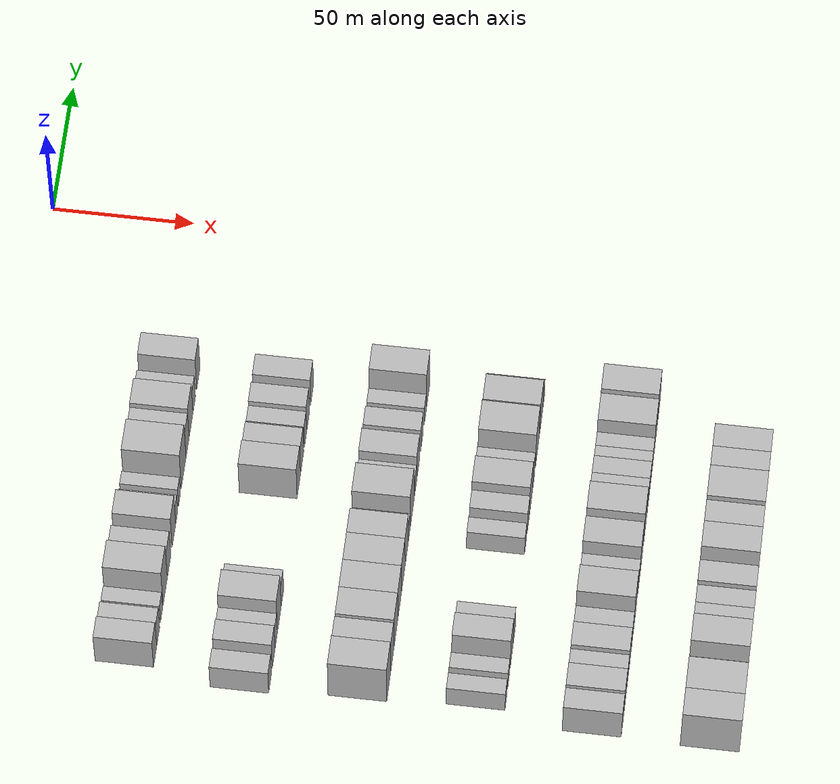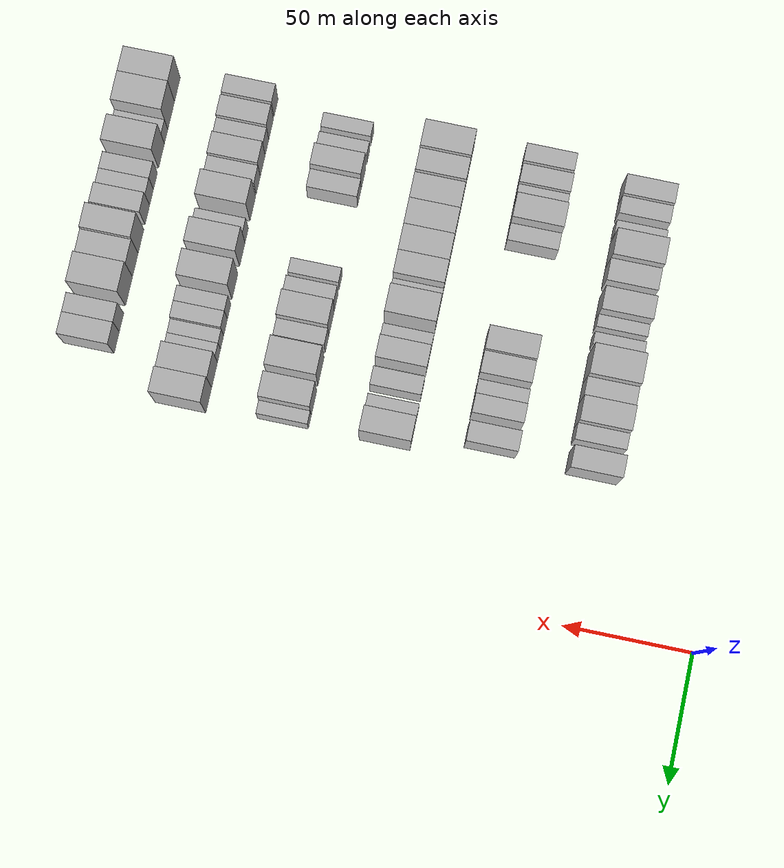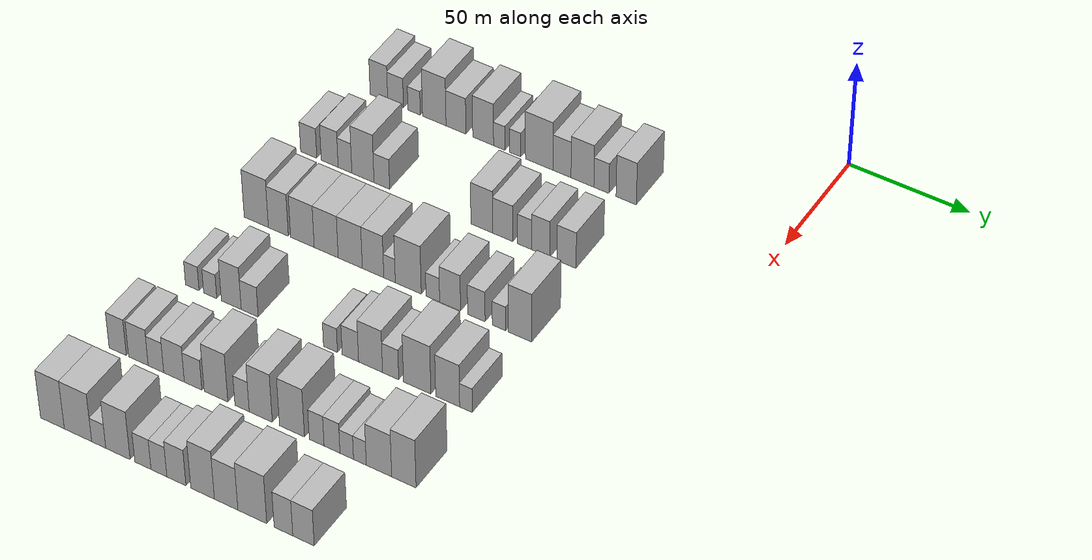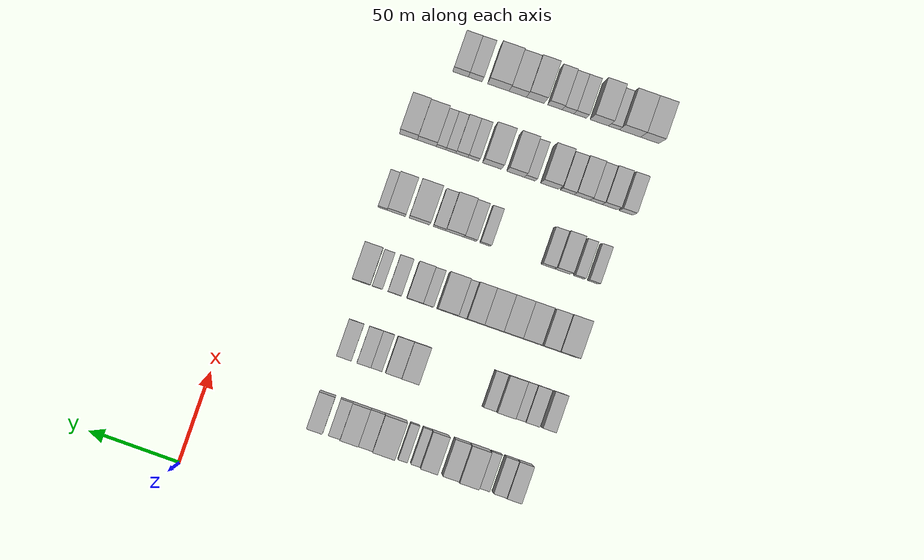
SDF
<sdf version="1.6">
 <world name="default">
  <model name="building_48">
   <static>1</static>
   <pose>50.0000 -169.5506 0 0.000000 0.000000 0.000000</pose>
   <link name="link">
    <pose>0 0 9.00 0 0 0</pose>
    <collision name="collision"><geometry><box><size>20.0000 7.9117 18.0000</size></box></geometry></collision>
    <visual name="visual">
     <cast_shadows>0</cast_shadows>
     <geometry><box><size>20.0000 7.9117 18.0000</size></box></geometry>
     <material>
      <script>
       <uri>model://HANNAS_wall/materials/scripts</uri>
       <uri>model://HANNAS_wall/materials/textures</uri>
       <name>vrc/HANNAS_wall</name>
      </script>
     </material>
    </visual>
   </link>
  </model>
  <model name="building_49">
   <static>1</static>
   <pose>50.0000 -162.0605 0 0.000000 0.000000 0.000000</pose>
   <link name="link">
    <pose>0 0 7.50 0 0 0</pose>
    <collision name="collision"><geometry><box><size>20.0000 7.0684 15.0000</size></box></geometry></collision>
    <visual name="visual">
     <cast_shadows>0</cast_shadows>
     <geometry><box><size>20.0000 7.0684 15.0000</size></box></geometry>
     <material>
      <script>
       <uri>model://HANNAS_wall/materials/scripts</uri>
       <uri>model://HANNAS_wall/materials/textures</uri>
       <name>vrc/HANNAS_wall</name>
      </script>
     </material>
    </visual>
   </link>
  </model>
  <model name="building_50">
   <static>1</static>
   <pose>50.0000 -153.7753 0 0.000000 0.000000 0.000000</pose>
   <link name="link">
    <pose>0 0 6.00 0 0 0</pose>
    <collision name="collision"><geometry><box><size>20.0000 5.5020 12.0000</size></box></geometry></collision>
    <visual name="visual">
     <cast_shadows>0</cast_shadows>
     <geometry><box><size>20.0000 5.5020 12.0000</size></box></geometry>
     <material>
      <script>
       <uri>model://HANNAS_wall/materials/scripts</uri>
       <uri>model://HANNAS_wall/materials/textures</uri>
       <name>vrc/HANNAS_wall</name>
      </script>
     </material>
    </visual>
   </link>
  </model>
  <model name="building_51">
   <static>1</static>
   <pose>50.0000 -144.7977 0 0.000000 0.000000 0.000000</pose>
   <link name="link">
    <pose>0 0 12.00 0 0 0</pose>
    <collision name="collision"><geometry><box><size>20.0000 10.4533 24.0000</size></box></geometry></collision>
    <visual name="visual">
     <cast_shadows>0</cast_shadows>
     <geometry><box><size>20.0000 10.4533 24.0000</size></box></geometry>
     <material>
      <script>
       <uri>model://HANNAS_wall/materials/scripts</uri>
       <uri>model://HANNAS_wall/materials/textures</uri>
       <name>vrc/HANNAS_wall</name>
      </script>
     </material>
    </visual>
   </link>
  </model>
  <model name="building_52">
   <static>1</static>
   <pose>50.0000 -135.1730 0 0.000000 0.000000 0.000000</pose>
   <link name="link">
    <pose>0 0 9.00 0 0 0</pose>
    <collision name="collision"><geometry><box><size>20.0000 8.7961 18.0000</size></box></geometry></collision>
    <visual name="visual">
     <cast_shadows>0</cast_shadows>
     <geometry><box><size>20.0000 8.7961 18.0000</size></box></geometry>
     <material>
      <script>
       <uri>model://HANNAS_wall/materials/scripts</uri>
       <uri>model://HANNAS_wall/materials/textures</uri>
       <name>vrc/HANNAS_wall</name>
      </script>
     </material>
    </visual>
   </link>
  </model>
  <model name="building_53">
   <static>1</static>
   <pose>50.0000 -123.1936 0 0.000000 0.000000 0.000000</pose>
   <link name="link">
    <pose>0 0 10.50 0 0 0</pose>
    <collision name="collision"><geometry><box><size>20.0000 9.1625 21.0000</size></box></geometry></collision>
    <visual name="visual">
     <cast_shadows>0</cast_shadows>
     <geometry><box><size>20.0000 9.1625 21.0000</size></box></geometry>
     <material>
      <script>
       <uri>model://HANNAS_wall/materials/scripts</uri>
       <uri>model://HANNAS_wall/materials/textures</uri>
       <name>vrc/HANNAS_wall</name>
      </script>
     </material>
    </visual>
   </link>
  </model>
  <model name="building_54">
   <static>1</static>
   <pose>50.0000 -116.1149 0 0.000000 0.000000 0.000000</pose>
   <link name="link">
    <pose>0 0 6.00 0 0 0</pose>
    <collision name="collision"><geometry><box><size>20.0000 4.9950 12.0000</size></box></geometry></collision>
    <visual name="visual">
     <cast_shadows>0</cast_shadows>
     <geometry><box><size>20.0000 4.9950 12.0000</size></box></geometry>
     <material>
      <script>
       <uri>model://HANNAS_wall/materials/scripts</uri>
       <uri>model://HANNAS_wall/materials/textures</uri>
       <name>vrc/HANNAS_wall</name>
      </script>
     </material>
    </visual>
   </link>
  </model>
  <model name="building_55">
   <static>1</static>
   <pose>50.0000 -109.1459 0 0.000000 0.000000 0.000000</pose>
   <link name="link">
    <pose>0 0 6.00 0 0 0</pose>
    <collision name="collision"><geometry><box><size>20.0000 4.9430 12.0000</size></box></geometry></collision>
    <visual name="visual">
     <cast_shadows>0</cast_shadows>
     <geometry><box><size>20.0000 4.9430 12.0000</size></box></geometry>
     <material>
      <script>
       <uri>model://HANNAS_wall/materials/scripts</uri>
       <uri>model://HANNAS_wall/materials/textures</uri>
       <name>vrc/HANNAS_wall</name>
      </script>
     </material>
    </visual>
   </link>
  </model>
  <model name="building_56">
   <static>1</static>
   <pose>50.0000 -98.7004 0 0.000000 0.000000 0.000000</pose>
   <link name="link">
    <pose>0 0 12.00 0 0 0</pose>
    <collision name="collision"><geometry><box><size>20.0000 11.9479 24.0000</size></box></geometry></collision>
    <visual name="visual">
     <cast_shadows>0</cast_shadows>
     <geometry><box><size>20.0000 11.9479 24.0000</size></box></geometry>
     <material>
      <script>
       <uri>model://HANNAS_wall/materials/scripts</uri>
       <uri>model://HANNAS_wall/materials/textures</uri>
       <name>vrc/HANNAS_wall</name>
      </script>
     </material>
    </visual>
   </link>
  </model>
  <model name="building_57">
   <static>1</static>
   <pose>50.0000 -88.8313 0 0.000000 0.000000 0.000000</pose>
   <link name="link">
    <pose>0 0 9.00 0 0 0</pose>
    <collision name="collision"><geometry><box><size>20.0000 7.7903 18.0000</size></box></geometry></collision>
    <visual name="visual">
     <cast_shadows>0</cast_shadows>
     <geometry><box><size>20.0000 7.7903 18.0000</size></box></geometry>
     <material>
      <script>
       <uri>model://HANNAS_wall/materials/scripts</uri>
       <uri>model://HANNAS_wall/materials/textures</uri>
       <name>vrc/HANNAS_wall</name>
      </script>
     </material>
    </visual>
   </link>
  </model>
  <model name="building_58">
   <static>1</static>
   <pose>50.0000 -80.0118 0 0.000000 0.000000 0.000000</pose>
   <link name="link">
    <pose>0 0 10.50 0 0 0</pose>
    <collision name="collision"><geometry><box><size>20.0000 9.8487 21.0000</size></box></geometry></collision>
    <visual name="visual">
     <cast_shadows>0</cast_shadows>
     <geometry><box><size>20.0000 9.8487 21.0000</size></box></geometry>
     <material>
      <script>
       <uri>model://HANNAS_wall/materials/scripts</uri>
       <uri>model://HANNAS_wall/materials/textures</uri>
       <name>vrc/HANNAS_wall</name>
      </script>
     </material>
    </visual>
   </link>
  </model>
  <model name="building_59">
   <static>1</static>
   <pose>50.0000 -71.8478 0 0.000000 0.000000 0.000000</pose>
   <link name="link">
    <pose>0 0 7.50 0 0 0</pose>
    <collision name="collision"><geometry><box><size>20.0000 6.4791 15.0000</size></box></geometry></collision>
    <visual name="visual">
     <cast_shadows>0</cast_shadows>
     <geometry><box><size>20.0000 6.4791 15.0000</size></box></geometry>
     <material>
      <script>
       <uri>model://HANNAS_wall/materials/scripts</uri>
       <uri>model://HANNAS_wall/materials/textures</uri>
       <name>vrc/HANNAS_wall</name>
      </script>
     </material>
    </visual>
   </link>
  </model>
  <model name="building_60">
   <static>1</static>
   <pose>50.0000 -61.2861 0 0.000000 0.000000 0.000000</pose>
   <link name="link">
    <pose>0 0 10.50 0 0 0</pose>
    <collision name="collision"><geometry><box><size>20.0000 8.6444 21.0000</size></box></geometry></collision>
    <visual name="visual">
     <cast_shadows>0</cast_shadows>
     <geometry><box><size>20.0000 8.6444 21.0000</size></box></geometry>
     <material>
      <script>
       <uri>model://HANNAS_wall/materials/scripts</uri>
       <uri>model://HANNAS_wall/materials/textures</uri>
       <name>vrc/HANNAS_wall</name>
      </script>
     </material>
    </visual>
   </link>
  </model>
  <model name="building_188">
   <static>1</static>
   <pose>90.0000 -174.9783 0 0.000000 0.000000 0.000000</pose>
   <link name="link">
    <pose>0 0 7.50 0 0 0</pose>
    <collision name="collision"><geometry><box><size>20.0000 7.2082 15.0000</size></box></geometry></collision>
    <visual name="visual">
     <cast_shadows>0</cast_shadows>
     <geometry><box><size>20.0000 7.2082 15.0000</size></box></geometry>
     <material>
      <script>
       <uri>model://HANNAS_wall/materials/scripts</uri>
       <uri>model://HANNAS_wall/materials/textures</uri>
       <name>vrc/HANNAS_wall</name>
      </script>
     </material>
    </visual>
   </link>
  </model>
  <model name="building_189">
   <static>1</static>
   <pose>90.0000 -165.6161 0 0.000000 0.000000 0.000000</pose>
   <link name="link">
    <pose>0 0 9.00 0 0 0</pose>
    <collision name="collision"><geometry><box><size>20.0000 7.5163 18.0000</size></box></geometry></collision>
    <visual name="visual">
     <cast_shadows>0</cast_shadows>
     <geometry><box><size>20.0000 7.5163 18.0000</size></box></geometry>
     <material>
      <script>
       <uri>model://HANNAS_wall/materials/scripts</uri>
       <uri>model://HANNAS_wall/materials/textures</uri>
       <name>vrc/HANNAS_wall</name>
      </script>
     </material>
    </visual>
   </link>
  </model>
  <model name="building_190">
   <static>1</static>
   <pose>90.0000 -158.8227 0 0.000000 0.000000 0.000000</pose>
   <link name="link">
    <pose>0 0 7.50 0 0 0</pose>
    <collision name="collision"><geometry><box><size>20.0000 6.0705 15.0000</size></box></geometry></collision>
    <visual name="visual">
     <cast_shadows>0</cast_shadows>
     <geometry><box><size>20.0000 6.0705 15.0000</size></box></geometry>
     <material>
      <script>
       <uri>model://HANNAS_wall/materials/scripts</uri>
       <uri>model://HANNAS_wall/materials/textures</uri>
       <name>vrc/HANNAS_wall</name>
      </script>
     </material>
    </visual>
   </link>
  </model>
  <model name="building_191">
   <static>1</static>
   <pose>90.0000 -150.8932 0 0.000000 0.000000 0.000000</pose>
   <link name="link">
    <pose>0 0 12.00 0 0 0</pose>
    <collision name="collision"><geometry><box><size>20.0000 9.7885 24.0000</size></box></geometry></collision>
    <visual name="visual">
     <cast_shadows>0</cast_shadows>
     <geometry><box><size>20.0000 9.7885 24.0000</size></box></geometry>
     <material>
      <script>
       <uri>model://HANNAS_wall/materials/scripts</uri>
       <uri>model://HANNAS_wall/materials/textures</uri>
       <name>vrc/HANNAS_wall</name>
      </script>
     </material>
    </visual>
   </link>
  </model>
  <model name="building_192">
   <static>1</static>
   <pose>90.0000 -142.5712 0 0.000000 0.000000 0.000000</pose>
   <link name="link">
    <pose>0 0 7.50 0 0 0</pose>
    <collision name="collision"><geometry><box><size>20.0000 6.8555 15.0000</size></box></geometry></collision>
    <visual name="visual">
     <cast_shadows>0</cast_shadows>
     <geometry><box><size>20.0000 6.8555 15.0000</size></box></geometry>
     <material>
      <script>
       <uri>model://HANNAS_wall/materials/scripts</uri>
       <uri>model://HANNAS_wall/materials/textures</uri>
       <name>vrc/HANNAS_wall</name>
      </script>
     </material>
    </visual>
   </link>
  </model>
  <model name="building_193">
   <static>1</static>
   <pose>90.0000 -99.1602 0 0.000000 0.000000 0.000000</pose>
   <link name="link">
    <pose>0 0 10.50 0 0 0</pose>
    <collision name="collision"><geometry><box><size>20.0000 9.3221 21.0000</size></box></geometry></collision>
    <visual name="visual">
     <cast_shadows>0</cast_shadows>
     <geometry><box><size>20.0000 9.3221 21.0000</size></box></geometry>
     <material>
      <script>
       <uri>model://HANNAS_wall/materials/scripts</uri>
       <uri>model://HANNAS_wall/materials/textures</uri>
       <name>vrc/HANNAS_wall</name>
      </script>
     </material>
    </visual>
   </link>
  </model>
  <model name="building_194">
   <static>1</static>
   <pose>90.0000 -90.1506 0 0.000000 0.000000 0.000000</pose>
   <link name="link">
    <pose>0 0 9.00 0 0 0</pose>
    <collision name="collision"><geometry><box><size>20.0000 8.6970 18.0000</size></box></geometry></collision>
    <visual name="visual">
     <cast_shadows>0</cast_shadows>
     <geometry><box><size>20.0000 8.6970 18.0000</size></box></geometry>
     <material>
      <script>
       <uri>model://HANNAS_wall/materials/scripts</uri>
       <uri>model://HANNAS_wall/materials/textures</uri>
       <name>vrc/HANNAS_wall</name>
      </script>
     </material>
    </visual>
   </link>
  </model>
  <model name="building_195">
   <static>1</static>
   <pose>90.0000 -80.7592 0 0.000000 0.000000 0.000000</pose>
   <link name="link">
    <pose>0 0 7.50 0 0 0</pose>
    <collision name="collision"><geometry><box><size>20.0000 6.0857 15.0000</size></box></geometry></collision>
    <visual name="visual">
     <cast_shadows>0</cast_shadows>
     <geometry><box><size>20.0000 6.0857 15.0000</size></box></geometry>
     <material>
      <script>
       <uri>model://HANNAS_wall/materials/scripts</uri>
       <uri>model://HANNAS_wall/materials/textures</uri>
       <name>vrc/HANNAS_wall</name>
      </script>
     </material>
    </visual>
   </link>
  </model>
  <model name="building_196">
   <static>1</static>
   <pose>90.0000 -73.9334 0 0.000000 0.000000 0.000000</pose>
   <link name="link">
    <pose>0 0 9.00 0 0 0</pose>
    <collision name="collision"><geometry><box><size>20.0000 7.5660 18.0000</size></box></geometry></collision>
    <visual name="visual">
     <cast_shadows>0</cast_shadows>
     <geometry><box><size>20.0000 7.5660 18.0000</size></box></geometry>
     <material>
      <script>
       <uri>model://HANNAS_wall/materials/scripts</uri>
       <uri>model://HANNAS_wall/materials/textures</uri>
       <name>vrc/HANNAS_wall</name>
      </script>
     </material>
    </visual>
   </link>
  </model>
  <model name="building_197">
   <static>1</static>
   <pose>90.0000 -63.1010 0 0.000000 0.000000 0.000000</pose>
   <link name="link">
    <pose>0 0 9.00 0 0 0</pose>
    <collision name="collision"><geometry><box><size>20.0000 8.0987 18.0000</size></box></geometry></collision>
    <visual name="visual">
     <cast_shadows>0</cast_shadows>
     <geometry><box><size>20.0000 8.0987 18.0000</size></box></geometry>
     <material>
      <script>
       <uri>model://HANNAS_wall/materials/scripts</uri>
       <uri>model://HANNAS_wall/materials/textures</uri>
       <name>vrc/HANNAS_wall</name>
      </script>
     </material>
    </visual>
   </link>
  </model>
  <model name="building_322">
   <static>1</static>
   <pose>130.0000 -171.5721 0 0.000000 0.000000 0.000000</pose>
   <link name="link">
    <pose>0 0 12.00 0 0 0</pose>
    <collision name="collision"><geometry><box><size>20.0000 10.6572 24.0000</size></box></geometry></collision>
    <visual name="visual">
     <cast_shadows>0</cast_shadows>
     <geometry><box><size>20.0000 10.6572 24.0000</size></box></geometry>
     <material>
      <script>
       <uri>model://HANNAS_wall/materials/scripts</uri>
       <uri>model://HANNAS_wall/materials/textures</uri>
       <name>vrc/HANNAS_wall</name>
      </script>
     </material>
    </visual>
   </link>
  </model>
  <model name="building_323">
   <static>1</static>
   <pose>130.0000 -161.8560 0 0.000000 0.000000 0.000000</pose>
   <link name="link">
    <pose>0 0 10.50 0 0 0</pose>
    <collision name="collision"><geometry><box><size>20.0000 8.7750 21.0000</size></box></geometry></collision>
    <visual name="visual">
     <cast_shadows>0</cast_shadows>
     <geometry><box><size>20.0000 8.7750 21.0000</size></box></geometry>
     <material>
      <script>
       <uri>model://HANNAS_wall/materials/scripts</uri>
       <uri>model://HANNAS_wall/materials/textures</uri>
       <name>vrc/HANNAS_wall</name>
      </script>
     </material>
    </visual>
   </link>
  </model>
  <model name="building_324">
   <static>1</static>
   <pose>130.0000 -151.3119 0 0.000000 0.000000 0.000000</pose>
   <link name="link">
    <pose>0 0 10.50 0 0 0</pose>
    <collision name="collision"><geometry><box><size>20.0000 10.3131 21.0000</size></box></geometry></collision>
    <visual name="visual">
     <cast_shadows>0</cast_shadows>
     <geometry><box><size>20.0000 10.3131 21.0000</size></box></geometry>
     <material>
      <script>
       <uri>model://HANNAS_wall/materials/scripts</uri>
       <uri>model://HANNAS_wall/materials/textures</uri>
       <name>vrc/HANNAS_wall</name>
      </script>
     </material>
    </visual>
   </link>
  </model>
  <model name="building_325">
   <static>1</static>
   <pose>130.0000 -140.9434 0 0.000000 0.000000 0.000000</pose>
   <link name="link">
    <pose>0 0 10.50 0 0 0</pose>
    <collision name="collision"><geometry><box><size>20.0000 10.4239 21.0000</size></box></geometry></collision>
    <visual name="visual">
     <cast_shadows>0</cast_shadows>
     <geometry><box><size>20.0000 10.4239 21.0000</size></box></geometry>
     <material>
      <script>
       <uri>model://HANNAS_wall/materials/scripts</uri>
       <uri>model://HANNAS_wall/materials/textures</uri>
       <name>vrc/HANNAS_wall</name>
      </script>
     </material>
    </visual>
   </link>
  </model>
  <model name="building_326">
   <static>1</static>
   <pose>130.0000 -130.5133 0 0.000000 0.000000 0.000000</pose>
   <link name="link">
    <pose>0 0 10.50 0 0 0</pose>
    <collision name="collision"><geometry><box><size>20.0000 10.4364 21.0000</size></box></geometry></collision>
    <visual name="visual">
     <cast_shadows>0</cast_shadows>
     <geometry><box><size>20.0000 10.4364 21.0000</size></box></geometry>
     <material>
      <script>
       <uri>model://HANNAS_wall/materials/scripts</uri>
       <uri>model://HANNAS_wall/materials/textures</uri>
       <name>vrc/HANNAS_wall</name>
      </script>
     </material>
    </visual>
   </link>
  </model>
  <model name="building_327">
   <static>1</static>
   <pose>130.0000 -120.6836 0 0.000000 0.000000 0.000000</pose>
   <link name="link">
    <pose>0 0 10.50 0 0 0</pose>
    <collision name="collision"><geometry><box><size>20.0000 9.2230 21.0000</size></box></geometry></collision>
    <visual name="visual">
     <cast_shadows>0</cast_shadows>
     <geometry><box><size>20.0000 9.2230 21.0000</size></box></geometry>
     <material>
      <script>
       <uri>model://HANNAS_wall/materials/scripts</uri>
       <uri>model://HANNAS_wall/materials/textures</uri>
       <name>vrc/HANNAS_wall</name>
      </script>
     </material>
    </visual>
   </link>
  </model>
  <model name="building_328">
   <static>1</static>
   <pose>130.0000 -113.6063 0 0.000000 0.000000 0.000000</pose>
   <link name="link">
    <pose>0 0 6.00 0 0 0</pose>
    <collision name="collision"><geometry><box><size>20.0000 4.9316 12.0000</size></box></geometry></collision>
    <visual name="visual">
     <cast_shadows>0</cast_shadows>
     <geometry><box><size>20.0000 4.9316 12.0000</size></box></geometry>
     <material>
      <script>
       <uri>model://HANNAS_wall/materials/scripts</uri>
       <uri>model://HANNAS_wall/materials/textures</uri>
       <name>vrc/HANNAS_wall</name>
      </script>
     </material>
    </visual>
   </link>
  </model>
  <model name="building_329">
   <static>1</static>
   <pose>130.0000 -105.6013 0 0.000000 0.000000 0.000000</pose>
   <link name="link">
    <pose>0 0 12.00 0 0 0</pose>
    <collision name="collision"><geometry><box><size>20.0000 11.0783 24.0000</size></box></geometry></collision>
    <visual name="visual">
     <cast_shadows>0</cast_shadows>
     <geometry><box><size>20.0000 11.0783 24.0000</size></box></geometry>
     <material>
      <script>
       <uri>model://HANNAS_wall/materials/scripts</uri>
       <uri>model://HANNAS_wall/materials/textures</uri>
       <name>vrc/HANNAS_wall</name>
      </script>
     </material>
    </visual>
   </link>
  </model>
  <model name="building_330">
   <static>1</static>
   <pose>130.0000 -95.1673 0 0.000000 0.000000 0.000000</pose>
   <link name="link">
    <pose>0 0 6.00 0 0 0</pose>
    <collision name="collision"><geometry><box><size>20.0000 5.7899 12.0000</size></box></geometry></collision>
    <visual name="visual">
     <cast_shadows>0</cast_shadows>
     <geometry><box><size>20.0000 5.7899 12.0000</size></box></geometry>
     <material>
      <script>
       <uri>model://HANNAS_wall/materials/scripts</uri>
       <uri>model://HANNAS_wall/materials/textures</uri>
       <name>vrc/HANNAS_wall</name>
      </script>
     </material>
    </visual>
   </link>
  </model>
  <model name="building_331">
   <static>1</static>
   <pose>130.0000 -87.8497 0 0.000000 0.000000 0.000000</pose>
   <link name="link">
    <pose>0 0 9.00 0 0 0</pose>
    <collision name="collision"><geometry><box><size>20.0000 8.8452 18.0000</size></box></geometry></collision>
    <visual name="visual">
     <cast_shadows>0</cast_shadows>
     <geometry><box><size>20.0000 8.8452 18.0000</size></box></geometry>
     <material>
      <script>
       <uri>model://HANNAS_wall/materials/scripts</uri>
       <uri>model://HANNAS_wall/materials/textures</uri>
       <name>vrc/HANNAS_wall</name>
      </script>
     </material>
    </visual>
   </link>
  </model>
  <model name="building_332">
   <static>1</static>
   <pose>130.0000 -76.7673 0 0.000000 0.000000 0.000000</pose>
   <link name="link">
    <pose>0 0 7.50 0 0 0</pose>
    <collision name="collision"><geometry><box><size>20.0000 7.3196 15.0000</size></box></geometry></collision>
    <visual name="visual">
     <cast_shadows>0</cast_shadows>
     <geometry><box><size>20.0000 7.3196 15.0000</size></box></geometry>
     <material>
      <script>
       <uri>model://HANNAS_wall/materials/scripts</uri>
       <uri>model://HANNAS_wall/materials/textures</uri>
       <name>vrc/HANNAS_wall</name>
      </script>
     </material>
    </visual>
   </link>
  </model>
  <model name="building_333">
   <static>1</static>
   <pose>130.0000 -67.2819 0 0.000000 0.000000 0.000000</pose>
   <link name="link">
    <pose>0 0 6.00 0 0 0</pose>
    <collision name="collision"><geometry><box><size>20.0000 5.6514 12.0000</size></box></geometry></collision>
    <visual name="visual">
     <cast_shadows>0</cast_shadows>
     <geometry><box><size>20.0000 5.6514 12.0000</size></box></geometry>
     <material>
      <script>
       <uri>model://HANNAS_wall/materials/scripts</uri>
       <uri>model://HANNAS_wall/materials/textures</uri>
       <name>vrc/HANNAS_wall</name>
      </script>
     </material>
    </visual>
   </link>
  </model>
  <model name="building_334">
   <static>1</static>
   <pose>130.0000 -58.5458 0 0.000000 0.000000 0.000000</pose>
   <link name="link">
    <pose>0 0 12.00 0 0 0</pose>
    <collision name="collision"><geometry><box><size>20.0000 9.8208 24.0000</size></box></geometry></collision>
    <visual name="visual">
     <cast_shadows>0</cast_shadows>
     <geometry><box><size>20.0000 9.8208 24.0000</size></box></geometry>
     <material>
      <script>
       <uri>model://HANNAS_wall/materials/scripts</uri>
       <uri>model://HANNAS_wall/materials/textures</uri>
       <name>vrc/HANNAS_wall</name>
      </script>
     </material>
    </visual>
   </link>
  </model>
  <model name="building_457">
   <static>1</static>
   <pose>170.0000 -172.4004 0 0.000000 0.000000 0.000000</pose>
   <link name="link">
    <pose>0 0 6.00 0 0 0</pose>
    <collision name="collision"><geometry><box><size>20.0000 5.9155 12.0000</size></box></geometry></collision>
    <visual name="visual">
     <cast_shadows>0</cast_shadows>
     <geometry><box><size>20.0000 5.9155 12.0000</size></box></geometry>
     <material>
      <script>
       <uri>model://HANNAS_wall/materials/scripts</uri>
       <uri>model://HANNAS_wall/materials/textures</uri>
       <name>vrc/HANNAS_wall</name>
      </script>
     </material>
    </visual>
   </link>
  </model>
  <model name="building_458">
   <static>1</static>
   <pose>170.0000 -164.5824 0 0.000000 0.000000 0.000000</pose>
   <link name="link">
    <pose>0 0 6.00 0 0 0</pose>
    <collision name="collision"><geometry><box><size>20.0000 5.7205 12.0000</size></box></geometry></collision>
    <visual name="visual">
     <cast_shadows>0</cast_shadows>
     <geometry><box><size>20.0000 5.7205 12.0000</size></box></geometry>
     <material>
      <script>
       <uri>model://HANNAS_wall/materials/scripts</uri>
       <uri>model://HANNAS_wall/materials/textures</uri>
       <name>vrc/HANNAS_wall</name>
      </script>
     </material>
    </visual>
   </link>
  </model>
  <model name="building_459">
   <static>1</static>
   <pose>170.0000 -155.4114 0 0.000000 0.000000 0.000000</pose>
   <link name="link">
    <pose>0 0 10.50 0 0 0</pose>
    <collision name="collision"><geometry><box><size>20.0000 8.6215 21.0000</size></box></geometry></collision>
    <visual name="visual">
     <cast_shadows>0</cast_shadows>
     <geometry><box><size>20.0000 8.6215 21.0000</size></box></geometry>
     <material>
      <script>
       <uri>model://HANNAS_wall/materials/scripts</uri>
       <uri>model://HANNAS_wall/materials/textures</uri>
       <name>vrc/HANNAS_wall</name>
      </script>
     </material>
    </visual>
   </link>
  </model>
  <model name="building_460">
   <static>1</static>
   <pose>170.0000 -147.4466 0 0.000000 0.000000 0.000000</pose>
   <link name="link">
    <pose>0 0 7.50 0 0 0</pose>
    <collision name="collision"><geometry><box><size>20.0000 7.3081 15.0000</size></box></geometry></collision>
    <visual name="visual">
     <cast_shadows>0</cast_shadows>
     <geometry><box><size>20.0000 7.3081 15.0000</size></box></geometry>
     <material>
      <script>
       <uri>model://HANNAS_wall/materials/scripts</uri>
       <uri>model://HANNAS_wall/materials/textures</uri>
       <name>vrc/HANNAS_wall</name>
      </script>
     </material>
    </visual>
   </link>
  </model>
  <model name="building_461">
   <static>1</static>
   <pose>170.0000 -112.9102 0 0.000000 0.000000 0.000000</pose>
   <link name="link">
    <pose>0 0 6.00 0 0 0</pose>
    <collision name="collision"><geometry><box><size>20.0000 5.9216 12.0000</size></box></geometry></collision>
    <visual name="visual">
     <cast_shadows>0</cast_shadows>
     <geometry><box><size>20.0000 5.9216 12.0000</size></box></geometry>
     <material>
      <script>
       <uri>model://HANNAS_wall/materials/scripts</uri>
       <uri>model://HANNAS_wall/materials/textures</uri>
       <name>vrc/HANNAS_wall</name>
      </script>
     </material>
    </visual>
   </link>
  </model>
  <model name="building_462">
   <static>1</static>
   <pose>170.0000 -104.4899 0 0.000000 0.000000 0.000000</pose>
   <link name="link">
    <pose>0 0 7.50 0 0 0</pose>
    <collision name="collision"><geometry><box><size>20.0000 6.9190 15.0000</size></box></geometry></collision>
    <visual name="visual">
     <cast_shadows>0</cast_shadows>
     <geometry><box><size>20.0000 6.9190 15.0000</size></box></geometry>
     <material>
      <script>
       <uri>model://HANNAS_wall/materials/scripts</uri>
       <uri>model://HANNAS_wall/materials/textures</uri>
       <name>vrc/HANNAS_wall</name>
      </script>
     </material>
    </visual>
   </link>
  </model>
  <model name="building_463">
   <static>1</static>
   <pose>170.0000 -95.9953 0 0.000000 0.000000 0.000000</pose>
   <link name="link">
    <pose>0 0 10.50 0 0 0</pose>
    <collision name="collision"><geometry><box><size>20.0000 10.0700 21.0000</size></box></geometry></collision>
    <visual name="visual">
     <cast_shadows>0</cast_shadows>
     <geometry><box><size>20.0000 10.0700 21.0000</size></box></geometry>
     <material>
      <script>
       <uri>model://HANNAS_wall/materials/scripts</uri>
       <uri>model://HANNAS_wall/materials/textures</uri>
       <name>vrc/HANNAS_wall</name>
      </script>
     </material>
    </visual>
   </link>
  </model>
  <model name="building_464">
   <static>1</static>
   <pose>170.0000 -87.5849 0 0.000000 0.000000 0.000000</pose>
   <link name="link">
    <pose>0 0 7.50 0 0 0</pose>
    <collision name="collision"><geometry><box><size>20.0000 6.7508 15.0000</size></box></geometry></collision>
    <visual name="visual">
     <cast_shadows>0</cast_shadows>
     <geometry><box><size>20.0000 6.7508 15.0000</size></box></geometry>
     <material>
      <script>
       <uri>model://HANNAS_wall/materials/scripts</uri>
       <uri>model://HANNAS_wall/materials/textures</uri>
       <name>vrc/HANNAS_wall</name>
      </script>
     </material>
    </visual>
   </link>
  </model>
  <model name="building_465">
   <static>1</static>
   <pose>170.0000 -76.5288 0 0.000000 0.000000 0.000000</pose>
   <link name="link">
    <pose>0 0 12.00 0 0 0</pose>
    <collision name="collision"><geometry><box><size>20.0000 11.3616 24.0000</size></box></geometry></collision>
    <visual name="visual">
     <cast_shadows>0</cast_shadows>
     <geometry><box><size>20.0000 11.3616 24.0000</size></box></geometry>
     <material>
      <script>
       <uri>model://HANNAS_wall/materials/scripts</uri>
       <uri>model://HANNAS_wall/materials/textures</uri>
       <name>vrc/HANNAS_wall</name>
      </script>
     </material>
    </visual>
   </link>
  </model>
  <model name="building_466">
   <static>1</static>
   <pose>170.0000 -63.8919 0 0.000000 0.000000 0.000000</pose>
   <link name="link">
    <pose>0 0 10.50 0 0 0</pose>
    <collision name="collision"><geometry><box><size>20.0000 9.9121 21.0000</size></box></geometry></collision>
    <visual name="visual">
     <cast_shadows>0</cast_shadows>
     <geometry><box><size>20.0000 9.9121 21.0000</size></box></geometry>
     <material>
      <script>
       <uri>model://HANNAS_wall/materials/scripts</uri>
       <uri>model://HANNAS_wall/materials/textures</uri>
       <name>vrc/HANNAS_wall</name>
      </script>
     </material>
    </visual>
   </link>
  </model>
  <model name="building_467">
   <static>1</static>
   <pose>170.0000 -56.3344 0 0.000000 0.000000 0.000000</pose>
   <link name="link">
    <pose>0 0 6.00 0 0 0</pose>
    <collision name="collision"><geometry><box><size>20.0000 5.2030 12.0000</size></box></geometry></collision>
    <visual name="visual">
     <cast_shadows>0</cast_shadows>
     <geometry><box><size>20.0000 5.2030 12.0000</size></box></geometry>
     <material>
      <script>
       <uri>model://HANNAS_wall/materials/scripts</uri>
       <uri>model://HANNAS_wall/materials/textures</uri>
       <name>vrc/HANNAS_wall</name>
      </script>
     </material>
    </visual>
   </link>
  </model>
  <model name="building_594">
   <static>1</static>
   <pose>210.0000 -176.8504 0 0.000000 0.000000 0.000000</pose>
   <link name="link">
    <pose>0 0 9.00 0 0 0</pose>
    <collision name="collision"><geometry><box><size>20.0000 7.4837 18.0000</size></box></geometry></collision>
    <visual name="visual">
     <cast_shadows>0</cast_shadows>
     <geometry><box><size>20.0000 7.4837 18.0000</size></box></geometry>
     <material>
      <script>
       <uri>model://HANNAS_wall/materials/scripts</uri>
       <uri>model://HANNAS_wall/materials/textures</uri>
       <name>vrc/HANNAS_wall</name>
      </script>
     </material>
    </visual>
   </link>
  </model>
  <model name="building_595">
   <static>1</static>
   <pose>210.0000 -167.8943 0 0.000000 0.000000 0.000000</pose>
   <link name="link">
    <pose>0 0 9.00 0 0 0</pose>
    <collision name="collision"><geometry><box><size>20.0000 8.4286 18.0000</size></box></geometry></collision>
    <visual name="visual">
     <cast_shadows>0</cast_shadows>
     <geometry><box><size>20.0000 8.4286 18.0000</size></box></geometry>
     <material>
      <script>
       <uri>model://HANNAS_wall/materials/scripts</uri>
       <uri>model://HANNAS_wall/materials/textures</uri>
       <name>vrc/HANNAS_wall</name>
      </script>
     </material>
    </visual>
   </link>
  </model>
  <model name="building_596">
   <static>1</static>
   <pose>210.0000 -160.3339 0 0.000000 0.000000 0.000000</pose>
   <link name="link">
    <pose>0 0 7.50 0 0 0</pose>
    <collision name="collision"><geometry><box><size>20.0000 6.6922 15.0000</size></box></geometry></collision>
    <visual name="visual">
     <cast_shadows>0</cast_shadows>
     <geometry><box><size>20.0000 6.6922 15.0000</size></box></geometry>
     <material>
      <script>
       <uri>model://HANNAS_wall/materials/scripts</uri>
       <uri>model://HANNAS_wall/materials/textures</uri>
       <name>vrc/HANNAS_wall</name>
      </script>
     </material>
    </visual>
   </link>
  </model>
  <model name="building_597">
   <static>1</static>
   <pose>210.0000 -152.5802 0 0.000000 0.000000 0.000000</pose>
   <link name="link">
    <pose>0 0 9.00 0 0 0</pose>
    <collision name="collision"><geometry><box><size>20.0000 8.8151 18.0000</size></box></geometry></collision>
    <visual name="visual">
     <cast_shadows>0</cast_shadows>
     <geometry><box><size>20.0000 8.8151 18.0000</size></box></geometry>
     <material>
      <script>
       <uri>model://HANNAS_wall/materials/scripts</uri>
       <uri>model://HANNAS_wall/materials/textures</uri>
       <name>vrc/HANNAS_wall</name>
      </script>
     </material>
    </visual>
   </link>
  </model>
  <model name="building_598">
   <static>1</static>
   <pose>210.0000 -144.4360 0 0.000000 0.000000 0.000000</pose>
   <link name="link">
    <pose>0 0 7.50 0 0 0</pose>
    <collision name="collision"><geometry><box><size>20.0000 7.4733 15.0000</size></box></geometry></collision>
    <visual name="visual">
     <cast_shadows>0</cast_shadows>
     <geometry><box><size>20.0000 7.4733 15.0000</size></box></geometry>
     <material>
      <script>
       <uri>model://HANNAS_wall/materials/scripts</uri>
       <uri>model://HANNAS_wall/materials/textures</uri>
       <name>vrc/HANNAS_wall</name>
      </script>
     </material>
    </visual>
   </link>
  </model>
  <model name="building_599">
   <static>1</static>
   <pose>210.0000 -134.6795 0 0.000000 0.000000 0.000000</pose>
   <link name="link">
    <pose>0 0 12.00 0 0 0</pose>
    <collision name="collision"><geometry><box><size>20.0000 10.0396 24.0000</size></box></geometry></collision>
    <visual name="visual">
     <cast_shadows>0</cast_shadows>
     <geometry><box><size>20.0000 10.0396 24.0000</size></box></geometry>
     <material>
      <script>
       <uri>model://HANNAS_wall/materials/scripts</uri>
       <uri>model://HANNAS_wall/materials/textures</uri>
       <name>vrc/HANNAS_wall</name>
      </script>
     </material>
    </visual>
   </link>
  </model>
  <model name="building_600">
   <static>1</static>
   <pose>210.0000 -123.6487 0 0.000000 0.000000 0.000000</pose>
   <link name="link">
    <pose>0 0 7.50 0 0 0</pose>
    <collision name="collision"><geometry><box><size>20.0000 6.0220 15.0000</size></box></geometry></collision>
    <visual name="visual">
     <cast_shadows>0</cast_shadows>
     <geometry><box><size>20.0000 6.0220 15.0000</size></box></geometry>
     <material>
      <script>
       <uri>model://HANNAS_wall/materials/scripts</uri>
       <uri>model://HANNAS_wall/materials/textures</uri>
       <name>vrc/HANNAS_wall</name>
      </script>
     </material>
    </visual>
   </link>
  </model>
  <model name="building_601">
   <static>1</static>
   <pose>210.0000 -115.7856 0 0.000000 0.000000 0.000000</pose>
   <link name="link">
    <pose>0 0 12.00 0 0 0</pose>
    <collision name="collision"><geometry><box><size>20.0000 9.7044 24.0000</size></box></geometry></collision>
    <visual name="visual">
     <cast_shadows>0</cast_shadows>
     <geometry><box><size>20.0000 9.7044 24.0000</size></box></geometry>
     <material>
      <script>
       <uri>model://HANNAS_wall/materials/scripts</uri>
       <uri>model://HANNAS_wall/materials/textures</uri>
       <name>vrc/HANNAS_wall</name>
      </script>
     </material>
    </visual>
   </link>
  </model>
  <model name="building_602">
   <static>1</static>
   <pose>210.0000 -102.7170 0 0.000000 0.000000 0.000000</pose>
   <link name="link">
    <pose>0 0 12.00 0 0 0</pose>
    <collision name="collision"><geometry><box><size>20.0000 10.4329 24.0000</size></box></geometry></collision>
    <visual name="visual">
     <cast_shadows>0</cast_shadows>
     <geometry><box><size>20.0000 10.4329 24.0000</size></box></geometry>
     <material>
      <script>
       <uri>model://HANNAS_wall/materials/scripts</uri>
       <uri>model://HANNAS_wall/materials/textures</uri>
       <name>vrc/HANNAS_wall</name>
      </script>
     </material>
    </visual>
   </link>
  </model>
  <model name="building_603">
   <static>1</static>
   <pose>210.0000 -92.4428 0 0.000000 0.000000 0.000000</pose>
   <link name="link">
    <pose>0 0 7.50 0 0 0</pose>
    <collision name="collision"><geometry><box><size>20.0000 6.1155 15.0000</size></box></geometry></collision>
    <visual name="visual">
     <cast_shadows>0</cast_shadows>
     <geometry><box><size>20.0000 6.1155 15.0000</size></box></geometry>
     <material>
      <script>
       <uri>model://HANNAS_wall/materials/scripts</uri>
       <uri>model://HANNAS_wall/materials/textures</uri>
       <name>vrc/HANNAS_wall</name>
      </script>
     </material>
    </visual>
   </link>
  </model>
  <model name="building_604">
   <static>1</static>
   <pose>210.0000 -86.0922 0 0.000000 0.000000 0.000000</pose>
   <link name="link">
    <pose>0 0 7.50 0 0 0</pose>
    <collision name="collision"><geometry><box><size>20.0000 6.5856 15.0000</size></box></geometry></collision>
    <visual name="visual">
     <cast_shadows>0</cast_shadows>
     <geometry><box><size>20.0000 6.5856 15.0000</size></box></geometry>
     <material>
      <script>
       <uri>model://HANNAS_wall/materials/scripts</uri>
       <uri>model://HANNAS_wall/materials/textures</uri>
       <name>vrc/HANNAS_wall</name>
      </script>
     </material>
    </visual>
   </link>
  </model>
  <model name="building_605">
   <static>1</static>
   <pose>210.0000 -80.0107 0 0.000000 0.000000 0.000000</pose>
   <link name="link">
    <pose>0 0 6.00 0 0 0</pose>
    <collision name="collision"><geometry><box><size>20.0000 5.5775 12.0000</size></box></geometry></collision>
    <visual name="visual">
     <cast_shadows>0</cast_shadows>
     <geometry><box><size>20.0000 5.5775 12.0000</size></box></geometry>
     <material>
      <script>
       <uri>model://HANNAS_wall/materials/scripts</uri>
       <uri>model://HANNAS_wall/materials/textures</uri>
       <name>vrc/HANNAS_wall</name>
      </script>
     </material>
    </visual>
   </link>
  </model>
  <model name="building_606">
   <static>1</static>
   <pose>210.0000 -74.5993 0 0.000000 0.000000 0.000000</pose>
   <link name="link">
    <pose>0 0 6.00 0 0 0</pose>
    <collision name="collision"><geometry><box><size>20.0000 5.2452 12.0000</size></box></geometry></collision>
    <visual name="visual">
     <cast_shadows>0</cast_shadows>
     <geometry><box><size>20.0000 5.2452 12.0000</size></box></geometry>
     <material>
      <script>
       <uri>model://HANNAS_wall/materials/scripts</uri>
       <uri>model://HANNAS_wall/materials/textures</uri>
       <name>vrc/HANNAS_wall</name>
      </script>
     </material>
    </visual>
   </link>
  </model>
  <model name="building_607">
   <static>1</static>
   <pose>210.0000 -66.7809 0 0.000000 0.000000 0.000000</pose>
   <link name="link">
    <pose>0 0 10.50 0 0 0</pose>
    <collision name="collision"><geometry><box><size>20.0000 10.3918 21.0000</size></box></geometry></collision>
    <visual name="visual">
     <cast_shadows>0</cast_shadows>
     <geometry><box><size>20.0000 10.3918 21.0000</size></box></geometry>
     <material>
      <script>
       <uri>model://HANNAS_wall/materials/scripts</uri>
       <uri>model://HANNAS_wall/materials/textures</uri>
       <name>vrc/HANNAS_wall</name>
      </script>
     </material>
    </visual>
   </link>
  </model>
  <model name="building_608">
   <static>1</static>
   <pose>210.0000 -56.6274 0 0.000000 0.000000 0.000000</pose>
   <link name="link">
    <pose>0 0 12.00 0 0 0</pose>
    <collision name="collision"><geometry><box><size>20.0000 9.9152 24.0000</size></box></geometry></collision>
    <visual name="visual">
     <cast_shadows>0</cast_shadows>
     <geometry><box><size>20.0000 9.9152 24.0000</size></box></geometry>
     <material>
      <script>
       <uri>model://HANNAS_wall/materials/scripts</uri>
       <uri>model://HANNAS_wall/materials/textures</uri>
       <name>vrc/HANNAS_wall</name>
      </script>
     </material>
    </visual>
   </link>
  </model>
  <model name="building_738">
   <static>1</static>
   <pose>250.0000 -176.2530 0 0.000000 0.000000 0.000000</pose>
   <link name="link">
    <pose>0 0 12.00 0 0 0</pose>
    <collision name="collision"><geometry><box><size>20.0000 10.1693 24.0000</size></box></geometry></collision>
    <visual name="visual">
     <cast_shadows>0</cast_shadows>
     <geometry><box><size>20.0000 10.1693 24.0000</size></box></geometry>
     <material>
      <script>
       <uri>model://HANNAS_wall/materials/scripts</uri>
       <uri>model://HANNAS_wall/materials/textures</uri>
       <name>vrc/HANNAS_wall</name>
      </script>
     </material>
    </visual>
   </link>
  </model>
  <model name="building_739">
   <static>1</static>
   <pose>250.0000 -165.3232 0 0.000000 0.000000 0.000000</pose>
   <link name="link">
    <pose>0 0 12.00 0 0 0</pose>
    <collision name="collision"><geometry><box><size>20.0000 11.6903 24.0000</size></box></geometry></collision>
    <visual name="visual">
     <cast_shadows>0</cast_shadows>
     <geometry><box><size>20.0000 11.6903 24.0000</size></box></geometry>
     <material>
      <script>
       <uri>model://HANNAS_wall/materials/scripts</uri>
       <uri>model://HANNAS_wall/materials/textures</uri>
       <name>vrc/HANNAS_wall</name>
      </script>
     </material>
    </visual>
   </link>
  </model>
  <model name="building_740">
   <static>1</static>
   <pose>250.0000 -156.4793 0 0.000000 0.000000 0.000000</pose>
   <link name="link">
    <pose>0 0 6.00 0 0 0</pose>
    <collision name="collision"><geometry><box><size>20.0000 5.9975 12.0000</size></box></geometry></collision>
    <visual name="visual">
     <cast_shadows>0</cast_shadows>
     <geometry><box><size>20.0000 5.9975 12.0000</size></box></geometry>
     <material>
      <script>
       <uri>model://HANNAS_wall/materials/scripts</uri>
       <uri>model://HANNAS_wall/materials/textures</uri>
       <name>vrc/HANNAS_wall</name>
      </script>
     </material>
    </visual>
   </link>
  </model>
  <model name="building_741">
   <static>1</static>
   <pose>250.0000 -148.3333 0 0.000000 0.000000 0.000000</pose>
   <link name="link">
    <pose>0 0 12.00 0 0 0</pose>
    <collision name="collision"><geometry><box><size>20.0000 10.2945 24.0000</size></box></geometry></collision>
    <visual name="visual">
     <cast_shadows>0</cast_shadows>
     <geometry><box><size>20.0000 10.2945 24.0000</size></box></geometry>
     <material>
      <script>
       <uri>model://HANNAS_wall/materials/scripts</uri>
       <uri>model://HANNAS_wall/materials/textures</uri>
       <name>vrc/HANNAS_wall</name>
      </script>
     </material>
    </visual>
   </link>
  </model>
  <model name="building_742">
   <static>1</static>
   <pose>250.0000 -137.7889 0 0.000000 0.000000 0.000000</pose>
   <link name="link">
    <pose>0 0 7.50 0 0 0</pose>
    <collision name="collision"><geometry><box><size>20.0000 6.7944 15.0000</size></box></geometry></collision>
    <visual name="visual">
     <cast_shadows>0</cast_shadows>
     <geometry><box><size>20.0000 6.7944 15.0000</size></box></geometry>
     <material>
      <script>
       <uri>model://HANNAS_wall/materials/scripts</uri>
       <uri>model://HANNAS_wall/materials/textures</uri>
       <name>vrc/HANNAS_wall</name>
      </script>
     </material>
    </visual>
   </link>
  </model>
  <model name="building_743">
   <static>1</static>
   <pose>250.0000 -131.0680 0 0.000000 0.000000 0.000000</pose>
   <link name="link">
    <pose>0 0 7.50 0 0 0</pose>
    <collision name="collision"><geometry><box><size>20.0000 6.6473 15.0000</size></box></geometry></collision>
    <visual name="visual">
     <cast_shadows>0</cast_shadows>
     <geometry><box><size>20.0000 6.6473 15.0000</size></box></geometry>
     <material>
      <script>
       <uri>model://HANNAS_wall/materials/scripts</uri>
       <uri>model://HANNAS_wall/materials/textures</uri>
       <name>vrc/HANNAS_wall</name>
      </script>
     </material>
    </visual>
   </link>
  </model>
  <model name="building_744">
   <static>1</static>
   <pose>250.0000 -123.7515 0 0.000000 0.000000 0.000000</pose>
   <link name="link">
    <pose>0 0 9.00 0 0 0</pose>
    <collision name="collision"><geometry><box><size>20.0000 7.9859 18.0000</size></box></geometry></collision>
    <visual name="visual">
     <cast_shadows>0</cast_shadows>
     <geometry><box><size>20.0000 7.9859 18.0000</size></box></geometry>
     <material>
      <script>
       <uri>model://HANNAS_wall/materials/scripts</uri>
       <uri>model://HANNAS_wall/materials/textures</uri>
       <name>vrc/HANNAS_wall</name>
      </script>
     </material>
    </visual>
   </link>
  </model>
  <model name="building_745">
   <static>1</static>
   <pose>250.0000 -112.8538 0 0.000000 0.000000 0.000000</pose>
   <link name="link">
    <pose>0 0 12.00 0 0 0</pose>
    <collision name="collision"><geometry><box><size>20.0000 9.8095 24.0000</size></box></geometry></collision>
    <visual name="visual">
     <cast_shadows>0</cast_shadows>
     <geometry><box><size>20.0000 9.8095 24.0000</size></box></geometry>
     <material>
      <script>
       <uri>model://HANNAS_wall/materials/scripts</uri>
       <uri>model://HANNAS_wall/materials/textures</uri>
       <name>vrc/HANNAS_wall</name>
      </script>
     </material>
    </visual>
   </link>
  </model>
  <model name="building_746">
   <static>1</static>
   <pose>250.0000 -103.1049 0 0.000000 0.000000 0.000000</pose>
   <link name="link">
    <pose>0 0 10.50 0 0 0</pose>
    <collision name="collision"><geometry><box><size>20.0000 9.6883 21.0000</size></box></geometry></collision>
    <visual name="visual">
     <cast_shadows>0</cast_shadows>
     <geometry><box><size>20.0000 9.6883 21.0000</size></box></geometry>
     <material>
      <script>
       <uri>model://HANNAS_wall/materials/scripts</uri>
       <uri>model://HANNAS_wall/materials/textures</uri>
       <name>vrc/HANNAS_wall</name>
      </script>
     </material>
    </visual>
   </link>
  </model>
  <model name="building_747">
   <static>1</static>
   <pose>250.0000 -92.3298 0 0.000000 0.000000 0.000000</pose>
   <link name="link">
    <pose>0 0 12.00 0 0 0</pose>
    <collision name="collision"><geometry><box><size>20.0000 11.8620 24.0000</size></box></geometry></collision>
    <visual name="visual">
     <cast_shadows>0</cast_shadows>
     <geometry><box><size>20.0000 11.8620 24.0000</size></box></geometry>
     <material>
      <script>
       <uri>model://HANNAS_wall/materials/scripts</uri>
       <uri>model://HANNAS_wall/materials/textures</uri>
       <name>vrc/HANNAS_wall</name>
      </script>
     </material>
    </visual>
   </link>
  </model>
  <model name="building_748">
   <static>1</static>
   <pose>250.0000 -79.5989 0 0.000000 0.000000 0.000000</pose>
   <link name="link">
    <pose>0 0 9.00 0 0 0</pose>
    <collision name="collision"><geometry><box><size>20.0000 7.5998 18.0000</size></box></geometry></collision>
    <visual name="visual">
     <cast_shadows>0</cast_shadows>
     <geometry><box><size>20.0000 7.5998 18.0000</size></box></geometry>
     <material>
      <script>
       <uri>model://HANNAS_wall/materials/scripts</uri>
       <uri>model://HANNAS_wall/materials/textures</uri>
       <name>vrc/HANNAS_wall</name>
      </script>
     </material>
    </visual>
   </link>
  </model>
  <model name="building_749">
   <static>1</static>
   <pose>250.0000 -71.4516 0 0.000000 0.000000 0.000000</pose>
   <link name="link">
    <pose>0 0 9.00 0 0 0</pose>
    <collision name="collision"><geometry><box><size>20.0000 8.6948 18.0000</size></box></geometry></collision>
    <visual name="visual">
     <cast_shadows>0</cast_shadows>
     <geometry><box><size>20.0000 8.6948 18.0000</size></box></geometry>
     <material>
      <script>
       <uri>model://HANNAS_wall/materials/scripts</uri>
       <uri>model://HANNAS_wall/materials/textures</uri>
       <name>vrc/HANNAS_wall</name>
      </script>
     </material>
    </visual>
   </link>
  </model>
 </world>
</sdf>
